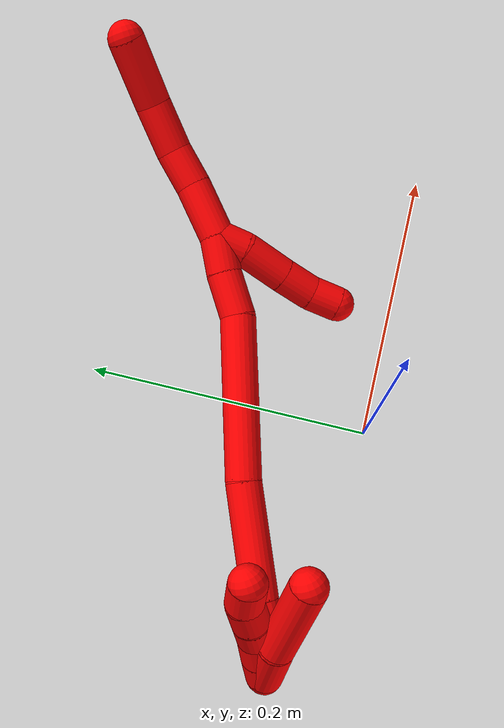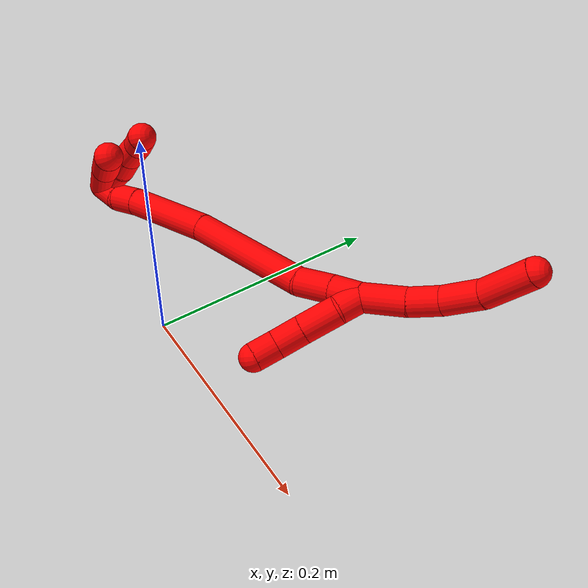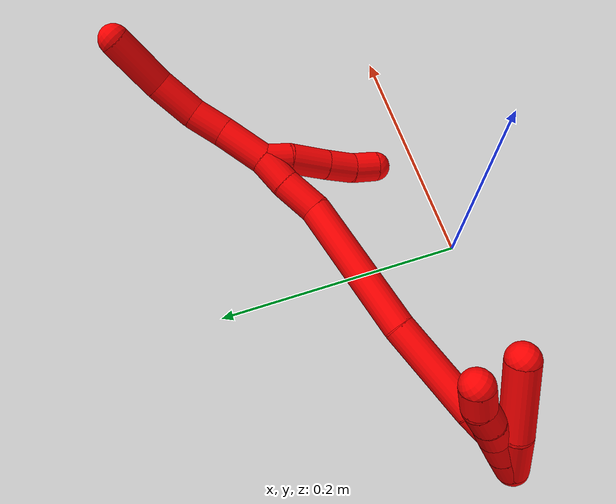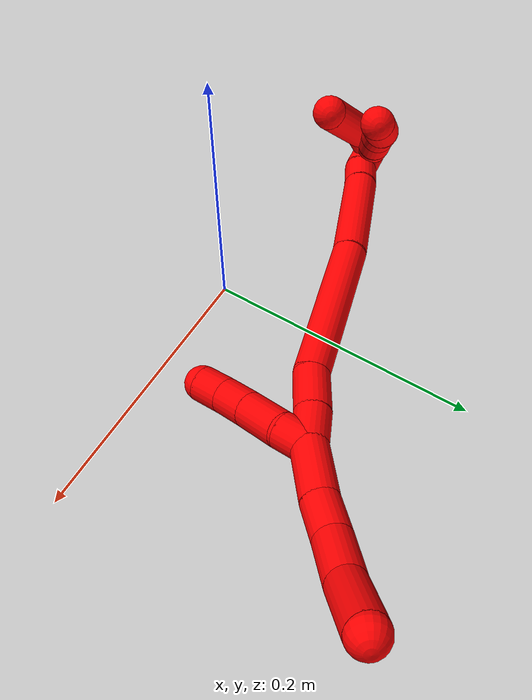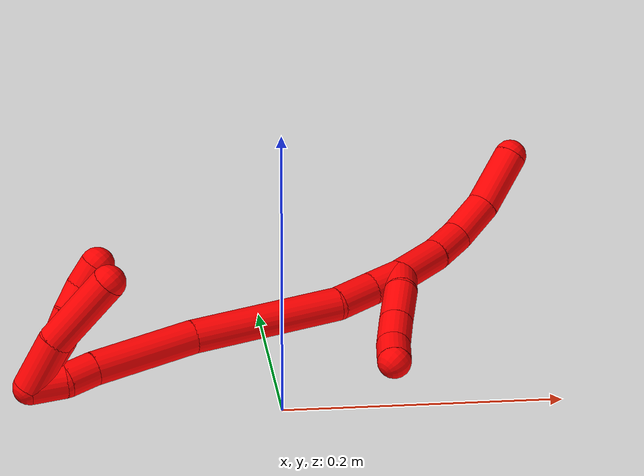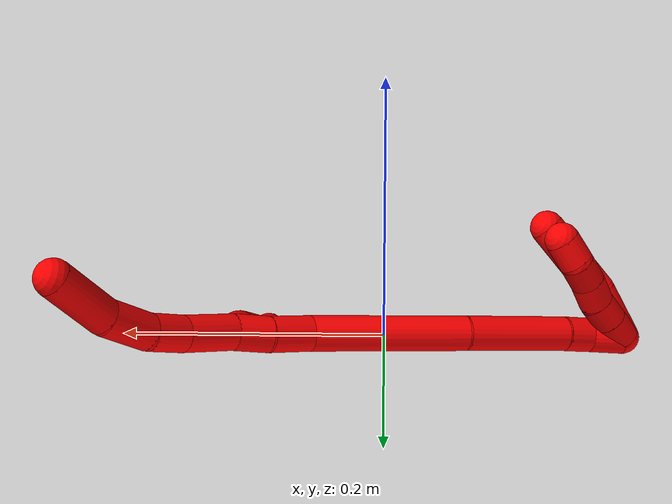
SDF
<sdf version="1.7">
 <world name="default">
  <model name="photoneo_s_sensor">
   <static>1</static>
   <pose>0 0 2 1.57079 1.57079 3.14159</pose>
   <link name="link">
    <inertial><mass>0.1</mass></inertial>
    <sensor name="sensor" type="depth">
     <update_rate>30</update_rate>
     <camera>
      <horizontal_fov>1.22</horizontal_fov>
      <image><width>1920</width><height>1200</height><format>B8G8R8</format></image>
      <clip><near>0.1</near><far>4</far></clip>
      <depth_camera><output>points</output></depth_camera>
     </camera>
     <plugin name="camera_plugin" filename="libgazebo_ros_depth_camera.so">
      <baseline>0.2</baseline>
      <alwaysOn>1</alwaysOn>
      <updateRate>0.0</updateRate>
      <cameraName>camera_ir</cameraName>
      <imageTopicName>/camera/color/image_raw</imageTopicName>
      <cameraInfoTopicName>/camera/color/camera_info</cameraInfoTopicName>
      <depthImageTopicName>/camera/depth/image_raw</depthImageTopicName>
      <depthImageCameraInfoTopicName>/camera/depth/camera_info</depthImageCameraInfoTopicName>
      <pointCloudTopicName>/camera/depth/points</pointCloudTopicName>
      <frameName>fr_optical</frameName>
      <pointCloudCutoff>0.1</pointCloudCutoff>
      <pointCloudCutoffMax>2.0</pointCloudCutoffMax>
      <distortionK1>0</distortionK1>
      <distortionK2>0</distortionK2>
      <distortionK3>0</distortionK3>
      <distortionT1>0</distortionT1>
      <distortionT2>0</distortionT2>
      <CxPrime>0</CxPrime>
      <Cx>0</Cx>
      <Cy>0</Cy>
      <focalLength>0</focalLength>
      <hackBaseline>0</hackBaseline>
     </plugin>
    </sensor>
   </link>
  </model>
  <model name="bin">
   <static>1</static>
   <link name="bottom">
    <collision name="collision-bottom">
     <pose>0 0 -0.01 0 -0 0</pose>
     <geometry><box><size>0.8 0.6 0.02</size></box></geometry>
     <surface>
      <friction><ode><mu>100</mu><mu2>100</mu2></ode></friction>
      <contact><collide_bitmask>65535</collide_bitmask></contact>
     </surface>
    </collision>
   </link>
   <link name="west_wall">
    <collision name="collision-west_wall">
     <pose>-0.41 0 0.1 0 -0 0</pose>
     <geometry><box><size>0.02 0.6 0.2</size></box></geometry>
     <surface>
      <friction><ode><mu>100</mu><mu2>100</mu2></ode></friction>
      <contact><collide_bitmask>65535</collide_bitmask></contact>
     </surface>
    </collision>
   </link>
   <link name="east_wall">
    <collision name="collision-east_wall">
     <pose>0.41 0 0.1 0 -0 0</pose>
     <geometry><box><size>0.02 0.6 0.2</size></box></geometry>
     <surface>
      <friction><ode><mu>100</mu><mu2>100</mu2></ode></friction>
      <contact><collide_bitmask>65535</collide_bitmask></contact>
     </surface>
    </collision>
   </link>
   <link name="south_wall">
    <collision name="collision-south_wall">
     <pose>0 -0.31 0.1 0 -0 0</pose>
     <geometry><box><size>0.8 0.02 0.2</size></box></geometry>
     <surface>
      <friction><ode><mu>100</mu><mu2>100</mu2></ode></friction>
      <contact><collide_bitmask>65535</collide_bitmask></contact>
     </surface>
    </collision>
   </link>
   <link name="north_wall">
    <collision name="collision-north_wall">
     <pose>0 0.31 0.1 0 -0 0</pose>
     <geometry><box><size>0.8 0.02 0.2</size></box></geometry>
     <surface>
      <friction><ode><mu>100</mu><mu2>100</mu2></ode></friction>
      <contact><collide_bitmask>65535</collide_bitmask></contact>
     </surface>
    </collision>
   </link>
  </model>
  <model name="2">
   <static>0</static>
   <link name="2">
    <collision name="collision-cylinder-e_1_2_8">
     <pose>0.006053 -0.001396 0.018954 0.073533 0.308349 0.011433</pose>
     <geometry><cylinder><radius>0.0125</radius><length>0.039893</length></cylinder></geometry>
     <surface>
      <friction><ode><mu>1.16</mu><mu2>1.16</mu2><slip1>0</slip1><slip2>0</slip2></ode></friction>
      <contact><ode><kp>1e+06</kp><kd>1</kd><max_vel>0</max_vel><min_depth>0.001</min_depth></ode></contact>
     </surface>
    </collision>
    <visual name="visual-cylinder-e_1_2_8">
     <pose>0.006053 -0.001396 0.018954 0.073533 0.308349 0.011433</pose>
     <geometry><cylinder><radius>0.0125</radius><length>0.039893</length></cylinder></geometry>
     <material><ambient>1 0 0 1</ambient></material>
    </visual>
    <collision name="collision-cylinder-e_2_8_9">
     <pose>0.015617 -0.002016 0.051318 -0.057821 0.255594 -0.007432</pose>
     <geometry><cylinder><radius>0.0125</radius><length>0.027767</length></cylinder></geometry>
     <surface>
      <friction><ode><mu>1.16</mu><mu2>1.16</mu2><slip1>0</slip1><slip2>0</slip2></ode></friction>
      <contact><ode><kp>1e+06</kp><kd>1</kd><max_vel>0</max_vel><min_depth>0.001</min_depth></ode></contact>
     </surface>
    </collision>
    <visual name="visual-cylinder-e_2_8_9">
     <pose>0.015617 -0.002016 0.051318 -0.057821 0.255594 -0.007432</pose>
     <geometry><cylinder><radius>0.0125</radius><length>0.027767</length></cylinder></geometry>
     <material><ambient>1 0 0 1</ambient></material>
    </visual>
    <collision name="collision-cylinder-e_3_9_10">
     <pose>0.019685 0.000333 0.082302 -0.08929 0.031633 -0.001413</pose>
     <geometry><cylinder><radius>0.0125</radius><length>0.035305</length></cylinder></geometry>
     <surface>
      <friction><ode><mu>1.16</mu><mu2>1.16</mu2><slip1>0</slip1><slip2>0</slip2></ode></friction>
      <contact><ode><kp>1e+06</kp><kd>1</kd><max_vel>0</max_vel><min_depth>0.001</min_depth></ode></contact>
     </surface>
    </collision>
    <visual name="visual-cylinder-e_3_9_10">
     <pose>0.019685 0.000333 0.082302 -0.08929 0.031633 -0.001413</pose>
     <geometry><cylinder><radius>0.0125</radius><length>0.035305</length></cylinder></geometry>
     <material><ambient>1 0 0 1</ambient></material>
    </visual>
    <collision name="collision-cylinder-e_4_10_6">
     <pose>0.015612 0.006681 0.122432 -0.208584 -0.198236 0.020817</pose>
     <geometry><cylinder><radius>0.0125</radius><length>0.047036</length></cylinder></geometry>
     <surface>
      <friction><ode><mu>1.16</mu><mu2>1.16</mu2><slip1>0</slip1><slip2>0</slip2></ode></friction>
      <contact><ode><kp>1e+06</kp><kd>1</kd><max_vel>0</max_vel><min_depth>0.001</min_depth></ode></contact>
     </surface>
    </collision>
    <visual name="visual-cylinder-e_4_10_6">
     <pose>0.015612 0.006681 0.122432 -0.208584 -0.198236 0.020817</pose>
     <geometry><cylinder><radius>0.0125</radius><length>0.047036</length></cylinder></geometry>
     <material><ambient>1 0 0 1</ambient></material>
    </visual>
    <collision name="collision-cylinder-e_1_2_11">
     <pose>-0.004508 -0.006469 -0.00723 2.41169 -0.434943 -1.04869</pose>
     <geometry><cylinder><radius>0.0125</radius><length>0.021396</length></cylinder></geometry>
     <surface>
      <friction><ode><mu>1.16</mu><mu2>1.16</mu2><slip1>0</slip1><slip2>0</slip2></ode></friction>
      <contact><ode><kp>1e+06</kp><kd>1</kd><max_vel>0</max_vel><min_depth>0.001</min_depth></ode></contact>
     </surface>
    </collision>
    <visual name="visual-cylinder-e_1_2_11">
     <pose>-0.004508 -0.006469 -0.00723 2.41169 -0.434943 -1.04869</pose>
     <geometry><cylinder><radius>0.0125</radius><length>0.021396</length></cylinder></geometry>
     <material><ambient>1 0 0 1</ambient></material>
    </visual>
    <collision name="collision-cylinder-e_2_11_12">
     <pose>-0.013114 -0.021834 -0.027523 2.5437 -0.253745 -0.784868</pose>
     <geometry><cylinder><radius>0.0125</radius><length>0.032652</length></cylinder></geometry>
     <surface>
      <friction><ode><mu>1.16</mu><mu2>1.16</mu2><slip1>0</slip1><slip2>0</slip2></ode></friction>
      <contact><ode><kp>1e+06</kp><kd>1</kd><max_vel>0</max_vel><min_depth>0.001</min_depth></ode></contact>
     </surface>
    </collision>
    <visual name="visual-cylinder-e_2_11_12">
     <pose>-0.013114 -0.021834 -0.027523 2.5437 -0.253745 -0.784868</pose>
     <geometry><cylinder><radius>0.0125</radius><length>0.032652</length></cylinder></geometry>
     <material><ambient>1 0 0 1</ambient></material>
    </visual>
    <collision name="collision-cylinder-e_3_12_13">
     <pose>-0.020567 -0.037736 -0.050224 2.51311 -0.274431 -0.803501</pose>
     <geometry><cylinder><radius>0.0125</radius><length>0.02476</length></cylinder></geometry>
     <surface>
      <friction><ode><mu>1.16</mu><mu2>1.16</mu2><slip1>0</slip1><slip2>0</slip2></ode></friction>
      <contact><ode><kp>1e+06</kp><kd>1</kd><max_vel>0</max_vel><min_depth>0.001</min_depth></ode></contact>
     </surface>
    </collision>
    <visual name="visual-cylinder-e_3_12_13">
     <pose>-0.020567 -0.037736 -0.050224 2.51311 -0.274431 -0.803501</pose>
     <geometry><cylinder><radius>0.0125</radius><length>0.02476</length></cylinder></geometry>
     <material><ambient>1 0 0 1</ambient></material>
    </visual>
    <collision name="collision-cylinder-e_4_13_5">
     <pose>-0.028471 -0.051263 -0.066869 2.39198 -0.443682 -1.04117</pose>
     <geometry><cylinder><radius>0.0125</radius><length>0.021191</length></cylinder></geometry>
     <surface>
      <friction><ode><mu>1.16</mu><mu2>1.16</mu2><slip1>0</slip1><slip2>0</slip2></ode></friction>
      <contact><ode><kp>1e+06</kp><kd>1</kd><max_vel>0</max_vel><min_depth>0.001</min_depth></ode></contact>
     </surface>
    </collision>
    <visual name="visual-cylinder-e_4_13_5">
     <pose>-0.028471 -0.051263 -0.066869 2.39198 -0.443682 -1.04117</pose>
     <geometry><cylinder><radius>0.0125</radius><length>0.021191</length></cylinder></geometry>
     <material><ambient>1 0 0 1</ambient></material>
    </visual>
    <collision name="collision-cylinder-e_1_2_14">
     <pose>-0.002242 0.003677 -0.012484 -2.85514 -0.170625 1.07051</pose>
     <geometry><cylinder><radius>0.0125</radius><length>0.026413</length></cylinder></geometry>
     <surface>
      <friction><ode><mu>1.16</mu><mu2>1.16</mu2><slip1>0</slip1><slip2>0</slip2></ode></friction>
      <contact><ode><kp>1e+06</kp><kd>1</kd><max_vel>0</max_vel><min_depth>0.001</min_depth></ode></contact>
     </surface>
    </collision>
    <visual name="visual-cylinder-e_1_2_14">
     <pose>-0.002242 0.003677 -0.012484 -2.85514 -0.170625 1.07051</pose>
     <geometry><cylinder><radius>0.0125</radius><length>0.026413</length></cylinder></geometry>
     <material><ambient>1 0 0 1</ambient></material>
    </visual>
    <collision name="collision-cylinder-e_2_14_15">
     <pose>-0.008848 0.010612 -0.039971 -2.92779 -0.276892 1.82905</pose>
     <geometry><cylinder><radius>0.0125</radius><length>0.03192</length></cylinder></geometry>
     <surface>
      <friction><ode><mu>1.16</mu><mu2>1.16</mu2><slip1>0</slip1><slip2>0</slip2></ode></friction>
      <contact><ode><kp>1e+06</kp><kd>1</kd><max_vel>0</max_vel><min_depth>0.001</min_depth></ode></contact>
     </surface>
    </collision>
    <visual name="visual-cylinder-e_2_14_15">
     <pose>-0.008848 0.010612 -0.039971 -2.92779 -0.276892 1.82905</pose>
     <geometry><cylinder><radius>0.0125</radius><length>0.03192</length></cylinder></geometry>
     <material><ambient>1 0 0 1</ambient></material>
    </visual>
    <collision name="collision-cylinder-e_3_15_16">
     <pose>-0.023757 0.040058 -0.104467 -2.6549 -0.186159 0.719308</pose>
     <geometry><cylinder><radius>0.0125</radius><length>0.113958</length></cylinder></geometry>
     <surface>
      <friction><ode><mu>1.16</mu><mu2>1.16</mu2><slip1>0</slip1><slip2>0</slip2></ode></friction>
      <contact><ode><kp>1e+06</kp><kd>1</kd><max_vel>0</max_vel><min_depth>0.001</min_depth></ode></contact>
     </surface>
    </collision>
    <visual name="visual-cylinder-e_3_15_16">
     <pose>-0.023757 0.040058 -0.104467 -2.6549 -0.186159 0.719308</pose>
     <geometry><cylinder><radius>0.0125</radius><length>0.113958</length></cylinder></geometry>
     <material><ambient>1 0 0 1</ambient></material>
    </visual>
    <collision name="collision-cylinder-e_4_16_17">
     <pose>-0.042603 0.080298 -0.190074 -2.77054 -0.211013 1.02741</pose>
     <geometry><cylinder><radius>0.0125</radius><length>0.07926</length></cylinder></geometry>
     <surface>
      <friction><ode><mu>1.16</mu><mu2>1.16</mu2><slip1>0</slip1><slip2>0</slip2></ode></friction>
      <contact><ode><kp>1e+06</kp><kd>1</kd><max_vel>0</max_vel><min_depth>0.001</min_depth></ode></contact>
     </surface>
    </collision>
    <visual name="visual-cylinder-e_4_16_17">
     <pose>-0.042603 0.080298 -0.190074 -2.77054 -0.211013 1.02741</pose>
     <geometry><cylinder><radius>0.0125</radius><length>0.07926</length></cylinder></geometry>
     <material><ambient>1 0 0 1</ambient></material>
    </visual>
    <collision name="collision-cylinder-e_5_17_18">
     <pose>-0.053147 0.097199 -0.236876 -2.88106 -0.200016 1.30723</pose>
     <geometry><cylinder><radius>0.0125</radius><length>0.022575</length></cylinder></geometry>
     <surface>
      <friction><ode><mu>1.16</mu><mu2>1.16</mu2><slip1>0</slip1><slip2>0</slip2></ode></friction>
      <contact><ode><kp>1e+06</kp><kd>1</kd><max_vel>0</max_vel><min_depth>0.001</min_depth></ode></contact>
     </surface>
    </collision>
    <visual name="visual-cylinder-e_5_17_18">
     <pose>-0.053147 0.097199 -0.236876 -2.88106 -0.200016 1.30723</pose>
     <geometry><cylinder><radius>0.0125</radius><length>0.022575</length></cylinder></geometry>
     <material><ambient>1 0 0 1</ambient></material>
    </visual>
    <collision name="collision-cylinder-e_6_18_1">
     <pose>-0.056713 0.10719 -0.258271 -2.5533 -0.102518 0.335529</pose>
     <geometry><cylinder><radius>0.0125</radius><length>0.025874</length></cylinder></geometry>
     <surface>
      <friction><ode><mu>1.16</mu><mu2>1.16</mu2><slip1>0</slip1><slip2>0</slip2></ode></friction>
      <contact><ode><kp>1e+06</kp><kd>1</kd><max_vel>0</max_vel><min_depth>0.001</min_depth></ode></contact>
     </surface>
    </collision>
    <visual name="visual-cylinder-e_6_18_1">
     <pose>-0.056713 0.10719 -0.258271 -2.5533 -0.102518 0.335529</pose>
     <geometry><cylinder><radius>0.0125</radius><length>0.025874</length></cylinder></geometry>
     <material><ambient>1 0 0 1</ambient></material>
    </visual>
    <collision name="collision-cylinder-e_1_1_19">
     <pose>-0.071592 0.114111 -0.254214 0.014942 -0.742724 -0.005819</pose>
     <geometry><cylinder><radius>0.0125</radius><length>0.040085</length></cylinder></geometry>
     <surface>
      <friction><ode><mu>1.16</mu><mu2>1.16</mu2><slip1>0</slip1><slip2>0</slip2></ode></friction>
      <contact><ode><kp>1e+06</kp><kd>1</kd><max_vel>0</max_vel><min_depth>0.001</min_depth></ode></contact>
     </surface>
    </collision>
    <visual name="visual-cylinder-e_1_1_19">
     <pose>-0.071592 0.114111 -0.254214 0.014942 -0.742724 -0.005819</pose>
     <geometry><cylinder><radius>0.0125</radius><length>0.040085</length></cylinder></geometry>
     <material><ambient>1 0 0 1</ambient></material>
    </visual>
    <collision name="collision-cylinder-e_2_19_4">
     <pose>-0.103904 0.106988 -0.217137 0.300012 -0.676584 -0.106248</pose>
     <geometry><cylinder><radius>0.0125</radius><length>0.059915</length></cylinder></geometry>
     <surface>
      <friction><ode><mu>1.16</mu><mu2>1.16</mu2><slip1>0</slip1><slip2>0</slip2></ode></friction>
      <contact><ode><kp>1e+06</kp><kd>1</kd><max_vel>0</max_vel><min_depth>0.001</min_depth></ode></contact>
     </surface>
    </collision>
    <visual name="visual-cylinder-e_2_19_4">
     <pose>-0.103904 0.106988 -0.217137 0.300012 -0.676584 -0.106248</pose>
     <geometry><cylinder><radius>0.0125</radius><length>0.059915</length></cylinder></geometry>
     <material><ambient>1 0 0 1</ambient></material>
    </visual>
    <collision name="collision-cylinder-e_1_1_20">
     <pose>-0.061775 0.115468 -0.259771 -0.122789 -0.383073 0.023839</pose>
     <geometry><cylinder><radius>0.0125</radius><length>0.02</length></cylinder></geometry>
     <surface>
      <friction><ode><mu>1.16</mu><mu2>1.16</mu2><slip1>0</slip1><slip2>0</slip2></ode></friction>
      <contact><ode><kp>1e+06</kp><kd>1</kd><max_vel>0</max_vel><min_depth>0.001</min_depth></ode></contact>
     </surface>
    </collision>
    <visual name="visual-cylinder-e_1_1_20">
     <pose>-0.061775 0.115468 -0.259771 -0.122789 -0.383073 0.023839</pose>
     <geometry><cylinder><radius>0.0125</radius><length>0.02</length></cylinder></geometry>
     <material><ambient>1 0 0 1</ambient></material>
    </visual>
    <collision name="collision-cylinder-e_2_20_21">
     <pose>-0.069315 0.11755 -0.241365 -0.102446 -0.390074 0.020255</pose>
     <geometry><cylinder><radius>0.0125</radius><length>0.02</length></cylinder></geometry>
     <surface>
      <friction><ode><mu>1.16</mu><mu2>1.16</mu2><slip1>0</slip1><slip2>0</slip2></ode></friction>
      <contact><ode><kp>1e+06</kp><kd>1</kd><max_vel>0</max_vel><min_depth>0.001</min_depth></ode></contact>
     </surface>
    </collision>
    <visual name="visual-cylinder-e_2_20_21">
     <pose>-0.069315 0.11755 -0.241365 -0.102446 -0.390074 0.020255</pose>
     <geometry><cylinder><radius>0.0125</radius><length>0.02</length></cylinder></geometry>
     <material><ambient>1 0 0 1</ambient></material>
    </visual>
    <collision name="collision-cylinder-e_3_21_22">
     <pose>-0.077932 0.12089 -0.223734 -0.276661 -0.502328 0.071412</pose>
     <geometry><cylinder><radius>0.0125</radius><length>0.02</length></cylinder></geometry>
     <surface>
      <friction><ode><mu>1.16</mu><mu2>1.16</mu2><slip1>0</slip1><slip2>0</slip2></ode></friction>
      <contact><ode><kp>1e+06</kp><kd>1</kd><max_vel>0</max_vel><min_depth>0.001</min_depth></ode></contact>
     </surface>
    </collision>
    <visual name="visual-cylinder-e_3_21_22">
     <pose>-0.077932 0.12089 -0.223734 -0.276661 -0.502328 0.071412</pose>
     <geometry><cylinder><radius>0.0125</radius><length>0.02</length></cylinder></geometry>
     <material><ambient>1 0 0 1</ambient></material>
    </visual>
    <collision name="collision-cylinder-e_4_22_23">
     <pose>-0.086655 0.125293 -0.206319 -0.220059 -0.401476 0.044951</pose>
     <geometry><cylinder><radius>0.0125</radius><length>0.02</length></cylinder></geometry>
     <surface>
      <friction><ode><mu>1.16</mu><mu2>1.16</mu2><slip1>0</slip1><slip2>0</slip2></ode></friction>
      <contact><ode><kp>1e+06</kp><kd>1</kd><max_vel>0</max_vel><min_depth>0.001</min_depth></ode></contact>
     </surface>
    </collision>
    <visual name="visual-cylinder-e_4_22_23">
     <pose>-0.086655 0.125293 -0.206319 -0.220059 -0.401476 0.044951</pose>
     <geometry><cylinder><radius>0.0125</radius><length>0.02</length></cylinder></geometry>
     <material><ambient>1 0 0 1</ambient></material>
    </visual>
    <collision name="collision-cylinder-e_5_23_3">
     <pose>-0.096454 0.127124 -0.189258 0.022096 -0.629931 -0.007199</pose>
     <geometry><cylinder><radius>0.0125</radius><length>0.02</length></cylinder></geometry>
     <surface>
      <friction><ode><mu>1.16</mu><mu2>1.16</mu2><slip1>0</slip1><slip2>0</slip2></ode></friction>
      <contact><ode><kp>1e+06</kp><kd>1</kd><max_vel>0</max_vel><min_depth>0.001</min_depth></ode></contact>
     </surface>
    </collision>
    <visual name="visual-cylinder-e_5_23_3">
     <pose>-0.096454 0.127124 -0.189258 0.022096 -0.629931 -0.007199</pose>
     <geometry><cylinder><radius>0.0125</radius><length>0.02</length></cylinder></geometry>
     <material><ambient>1 0 0 1</ambient></material>
    </visual>
    <collision name="collision-sphere-3">
     <pose>-0.102344 0.126945 -0.181179 0 -0 0</pose>
     <geometry><sphere><radius>0.0125</radius></sphere></geometry>
     <surface>
      <friction><ode><mu>1.16</mu><mu2>1.16</mu2><slip1>0</slip1><slip2>0</slip2></ode></friction>
      <contact><ode><kp>1e+06</kp><kd>1</kd><max_vel>0</max_vel><min_depth>0.001</min_depth></ode></contact>
     </surface>
    </collision>
    <visual name="visual-sphere-3">
     <pose>-0.102344 0.126945 -0.181179 0 -0 0</pose>
     <geometry><sphere><radius>0.0125</radius></sphere></geometry>
     <material><ambient>1 0 0 1</ambient></material>
    </visual>
    <collision name="collision-sphere-23">
     <pose>-0.090563 0.127302 -0.197337 0 -0 0</pose>
     <geometry><sphere><radius>0.0125</radius></sphere></geometry>
     <surface>
      <friction><ode><mu>1.16</mu><mu2>1.16</mu2><slip1>0</slip1><slip2>0</slip2></ode></friction>
      <contact><ode><kp>1e+06</kp><kd>1</kd><max_vel>0</max_vel><min_depth>0.001</min_depth></ode></contact>
     </surface>
    </collision>
    <visual name="visual-sphere-23">
     <pose>-0.090563 0.127302 -0.197337 0 -0 0</pose>
     <geometry><sphere><radius>0.0125</radius></sphere></geometry>
     <material><ambient>1 0 0 1</ambient></material>
    </visual>
    <collision name="collision-sphere-22">
     <pose>-0.082747 0.123284 -0.215302 0 -0 0</pose>
     <geometry><sphere><radius>0.0125</radius></sphere></geometry>
     <surface>
      <friction><ode><mu>1.16</mu><mu2>1.16</mu2><slip1>0</slip1><slip2>0</slip2></ode></friction>
      <contact><ode><kp>1e+06</kp><kd>1</kd><max_vel>0</max_vel><min_depth>0.001</min_depth></ode></contact>
     </surface>
    </collision>
    <visual name="visual-sphere-22">
     <pose>-0.082747 0.123284 -0.215302 0 -0 0</pose>
     <geometry><sphere><radius>0.0125</radius></sphere></geometry>
     <material><ambient>1 0 0 1</ambient></material>
    </visual>
    <collision name="collision-sphere-21">
     <pose>-0.073118 0.118496 -0.232165 0 -0 0</pose>
     <geometry><sphere><radius>0.0125</radius></sphere></geometry>
     <surface>
      <friction><ode><mu>1.16</mu><mu2>1.16</mu2><slip1>0</slip1><slip2>0</slip2></ode></friction>
      <contact><ode><kp>1e+06</kp><kd>1</kd><max_vel>0</max_vel><min_depth>0.001</min_depth></ode></contact>
     </surface>
    </collision>
    <visual name="visual-sphere-21">
     <pose>-0.073118 0.118496 -0.232165 0 -0 0</pose>
     <geometry><sphere><radius>0.0125</radius></sphere></geometry>
     <material><ambient>1 0 0 1</ambient></material>
    </visual>
    <collision name="collision-sphere-20">
     <pose>-0.065513 0.116604 -0.250566 0 -0 0</pose>
     <geometry><sphere><radius>0.0125</radius></sphere></geometry>
     <surface>
      <friction><ode><mu>1.16</mu><mu2>1.16</mu2><slip1>0</slip1><slip2>0</slip2></ode></friction>
      <contact><ode><kp>1e+06</kp><kd>1</kd><max_vel>0</max_vel><min_depth>0.001</min_depth></ode></contact>
     </surface>
    </collision>
    <visual name="visual-sphere-20">
     <pose>-0.065513 0.116604 -0.250566 0 -0 0</pose>
     <geometry><sphere><radius>0.0125</radius></sphere></geometry>
     <material><ambient>1 0 0 1</ambient></material>
    </visual>
    <collision name="collision-sphere-4">
     <pose>-0.122661 0.100085 -0.194822 0 -0 0</pose>
     <geometry><sphere><radius>0.0125</radius></sphere></geometry>
     <surface>
      <friction><ode><mu>1.16</mu><mu2>1.16</mu2><slip1>0</slip1><slip2>0</slip2></ode></friction>
      <contact><ode><kp>1e+06</kp><kd>1</kd><max_vel>0</max_vel><min_depth>0.001</min_depth></ode></contact>
     </surface>
    </collision>
    <visual name="visual-sphere-4">
     <pose>-0.122661 0.100085 -0.194822 0 -0 0</pose>
     <geometry><sphere><radius>0.0125</radius></sphere></geometry>
     <material><ambient>1 0 0 1</ambient></material>
    </visual>
    <collision name="collision-sphere-11">
     <pose>-0.009015 -0.012939 -0.014461 0 -0 0</pose>
     <geometry><sphere><radius>0.0125</radius></sphere></geometry>
     <surface>
      <friction><ode><mu>1.16</mu><mu2>1.16</mu2><slip1>0</slip1><slip2>0</slip2></ode></friction>
      <contact><ode><kp>1e+06</kp><kd>1</kd><max_vel>0</max_vel><min_depth>0.001</min_depth></ode></contact>
     </surface>
    </collision>
    <visual name="visual-sphere-11">
     <pose>-0.009015 -0.012939 -0.014461 0 -0 0</pose>
     <geometry><sphere><radius>0.0125</radius></sphere></geometry>
     <material><ambient>1 0 0 1</ambient></material>
    </visual>
    <collision name="collision-sphere-6">
     <pose>0.01098 0.011456 0.14499 0 -0 0</pose>
     <geometry><sphere><radius>0.0125</radius></sphere></geometry>
     <surface>
      <friction><ode><mu>1.16</mu><mu2>1.16</mu2><slip1>0</slip1><slip2>0</slip2></ode></friction>
      <contact><ode><kp>1e+06</kp><kd>1</kd><max_vel>0</max_vel><min_depth>0.001</min_depth></ode></contact>
     </surface>
    </collision>
    <visual name="visual-sphere-6">
     <pose>0.01098 0.011456 0.14499 0 -0 0</pose>
     <geometry><sphere><radius>0.0125</radius></sphere></geometry>
     <material><ambient>1 0 0 1</ambient></material>
    </visual>
    <collision name="collision-sphere-10">
     <pose>0.020243 0.001907 0.099875 0 -0 0</pose>
     <geometry><sphere><radius>0.0125</radius></sphere></geometry>
     <surface>
      <friction><ode><mu>1.16</mu><mu2>1.16</mu2><slip1>0</slip1><slip2>0</slip2></ode></friction>
      <contact><ode><kp>1e+06</kp><kd>1</kd><max_vel>0</max_vel><min_depth>0.001</min_depth></ode></contact>
     </surface>
    </collision>
    <visual name="visual-sphere-10">
     <pose>0.020243 0.001907 0.099875 0 -0 0</pose>
     <geometry><sphere><radius>0.0125</radius></sphere></geometry>
     <material><ambient>1 0 0 1</ambient></material>
    </visual>
    <collision name="collision-sphere-9">
     <pose>0.019127 -0.00124 0.064728 0 -0 0</pose>
     <geometry><sphere><radius>0.0125</radius></sphere></geometry>
     <surface>
      <friction><ode><mu>1.16</mu><mu2>1.16</mu2><slip1>0</slip1><slip2>0</slip2></ode></friction>
      <contact><ode><kp>1e+06</kp><kd>1</kd><max_vel>0</max_vel><min_depth>0.001</min_depth></ode></contact>
     </surface>
    </collision>
    <visual name="visual-sphere-9">
     <pose>0.019127 -0.00124 0.064728 0 -0 0</pose>
     <geometry><sphere><radius>0.0125</radius></sphere></geometry>
     <material><ambient>1 0 0 1</ambient></material>
    </visual>
    <collision name="collision-sphere-2">
     <geometry><sphere><radius>0.0125</radius></sphere></geometry>
     <surface>
      <friction><ode><mu>1.16</mu><mu2>1.16</mu2><slip1>0</slip1><slip2>0</slip2></ode></friction>
      <contact><ode><kp>1e+06</kp><kd>1</kd><max_vel>0</max_vel><min_depth>0.001</min_depth></ode></contact>
     </surface>
    </collision>
    <visual name="visual-sphere-2">
     <geometry><sphere><radius>0.0125</radius></sphere></geometry>
     <material><ambient>1 0 0 1</ambient></material>
    </visual>
    <collision name="collision-sphere-19">
     <pose>-0.085147 0.113891 -0.239452 0 -0 0</pose>
     <geometry><sphere><radius>0.0125</radius></sphere></geometry>
     <surface>
      <friction><ode><mu>1.16</mu><mu2>1.16</mu2><slip1>0</slip1><slip2>0</slip2></ode></friction>
      <contact><ode><kp>1e+06</kp><kd>1</kd><max_vel>0</max_vel><min_depth>0.001</min_depth></ode></contact>
     </surface>
    </collision>
    <visual name="visual-sphere-19">
     <pose>-0.085147 0.113891 -0.239452 0 -0 0</pose>
     <geometry><sphere><radius>0.0125</radius></sphere></geometry>
     <material><ambient>1 0 0 1</ambient></material>
    </visual>
    <collision name="collision-sphere-8">
     <pose>0.012107 -0.002793 0.037908 0 -0 0</pose>
     <geometry><sphere><radius>0.0125</radius></sphere></geometry>
     <surface>
      <friction><ode><mu>1.16</mu><mu2>1.16</mu2><slip1>0</slip1><slip2>0</slip2></ode></friction>
      <contact><ode><kp>1e+06</kp><kd>1</kd><max_vel>0</max_vel><min_depth>0.001</min_depth></ode></contact>
     </surface>
    </collision>
    <visual name="visual-sphere-8">
     <pose>0.012107 -0.002793 0.037908 0 -0 0</pose>
     <geometry><sphere><radius>0.0125</radius></sphere></geometry>
     <material><ambient>1 0 0 1</ambient></material>
    </visual>
    <collision name="collision-sphere-12">
     <pose>-0.017212 -0.03073 -0.040584 0 -0 0</pose>
     <geometry><sphere><radius>0.0125</radius></sphere></geometry>
     <surface>
      <friction><ode><mu>1.16</mu><mu2>1.16</mu2><slip1>0</slip1><slip2>0</slip2></ode></friction>
      <contact><ode><kp>1e+06</kp><kd>1</kd><max_vel>0</max_vel><min_depth>0.001</min_depth></ode></contact>
     </surface>
    </collision>
    <visual name="visual-sphere-12">
     <pose>-0.017212 -0.03073 -0.040584 0 -0 0</pose>
     <geometry><sphere><radius>0.0125</radius></sphere></geometry>
     <material><ambient>1 0 0 1</ambient></material>
    </visual>
    <collision name="collision-sphere-13">
     <pose>-0.023922 -0.044742 -0.059864 0 -0 0</pose>
     <geometry><sphere><radius>0.0125</radius></sphere></geometry>
     <surface>
      <friction><ode><mu>1.16</mu><mu2>1.16</mu2><slip1>0</slip1><slip2>0</slip2></ode></friction>
      <contact><ode><kp>1e+06</kp><kd>1</kd><max_vel>0</max_vel><min_depth>0.001</min_depth></ode></contact>
     </surface>
    </collision>
    <visual name="visual-sphere-13">
     <pose>-0.023922 -0.044742 -0.059864 0 -0 0</pose>
     <geometry><sphere><radius>0.0125</radius></sphere></geometry>
     <material><ambient>1 0 0 1</ambient></material>
    </visual>
    <collision name="collision-sphere-5">
     <pose>-0.033019 -0.057783 -0.073873 0 -0 0</pose>
     <geometry><sphere><radius>0.0125</radius></sphere></geometry>
     <surface>
      <friction><ode><mu>1.16</mu><mu2>1.16</mu2><slip1>0</slip1><slip2>0</slip2></ode></friction>
      <contact><ode><kp>1e+06</kp><kd>1</kd><max_vel>0</max_vel><min_depth>0.001</min_depth></ode></contact>
     </surface>
    </collision>
    <visual name="visual-sphere-5">
     <pose>-0.033019 -0.057783 -0.073873 0 -0 0</pose>
     <geometry><sphere><radius>0.0125</radius></sphere></geometry>
     <material><ambient>1 0 0 1</ambient></material>
    </visual>
    <collision name="collision-sphere-14">
     <pose>-0.004485 0.007355 -0.024969 0 -0 0</pose>
     <geometry><sphere><radius>0.0125</radius></sphere></geometry>
     <surface>
      <friction><ode><mu>1.16</mu><mu2>1.16</mu2><slip1>0</slip1><slip2>0</slip2></ode></friction>
      <contact><ode><kp>1e+06</kp><kd>1</kd><max_vel>0</max_vel><min_depth>0.001</min_depth></ode></contact>
     </surface>
    </collision>
    <visual name="visual-sphere-14">
     <pose>-0.004485 0.007355 -0.024969 0 -0 0</pose>
     <geometry><sphere><radius>0.0125</radius></sphere></geometry>
     <material><ambient>1 0 0 1</ambient></material>
    </visual>
    <collision name="collision-sphere-15">
     <pose>-0.013211 0.013869 -0.054974 0 -0 0</pose>
     <geometry><sphere><radius>0.0125</radius></sphere></geometry>
     <surface>
      <friction><ode><mu>1.16</mu><mu2>1.16</mu2><slip1>0</slip1><slip2>0</slip2></ode></friction>
      <contact><ode><kp>1e+06</kp><kd>1</kd><max_vel>0</max_vel><min_depth>0.001</min_depth></ode></contact>
     </surface>
    </collision>
    <visual name="visual-sphere-15">
     <pose>-0.013211 0.013869 -0.054974 0 -0 0</pose>
     <geometry><sphere><radius>0.0125</radius></sphere></geometry>
     <material><ambient>1 0 0 1</ambient></material>
    </visual>
    <collision name="collision-sphere-16">
     <pose>-0.034303 0.066247 -0.15396 0 -0 0</pose>
     <geometry><sphere><radius>0.0125</radius></sphere></geometry>
     <surface>
      <friction><ode><mu>1.16</mu><mu2>1.16</mu2><slip1>0</slip1><slip2>0</slip2></ode></friction>
      <contact><ode><kp>1e+06</kp><kd>1</kd><max_vel>0</max_vel><min_depth>0.001</min_depth></ode></contact>
     </surface>
    </collision>
    <visual name="visual-sphere-16">
     <pose>-0.034303 0.066247 -0.15396 0 -0 0</pose>
     <geometry><sphere><radius>0.0125</radius></sphere></geometry>
     <material><ambient>1 0 0 1</ambient></material>
    </visual>
    <collision name="collision-sphere-17">
     <pose>-0.050904 0.09435 -0.226187 0 -0 0</pose>
     <geometry><sphere><radius>0.0125</radius></sphere></geometry>
     <surface>
      <friction><ode><mu>1.16</mu><mu2>1.16</mu2><slip1>0</slip1><slip2>0</slip2></ode></friction>
      <contact><ode><kp>1e+06</kp><kd>1</kd><max_vel>0</max_vel><min_depth>0.001</min_depth></ode></contact>
     </surface>
    </collision>
    <visual name="visual-sphere-17">
     <pose>-0.050904 0.09435 -0.226187 0 -0 0</pose>
     <geometry><sphere><radius>0.0125</radius></sphere></geometry>
     <material><ambient>1 0 0 1</ambient></material>
    </visual>
    <collision name="collision-sphere-18">
     <pose>-0.055389 0.100049 -0.247565 0 -0 0</pose>
     <geometry><sphere><radius>0.0125</radius></sphere></geometry>
     <surface>
      <friction><ode><mu>1.16</mu><mu2>1.16</mu2><slip1>0</slip1><slip2>0</slip2></ode></friction>
      <contact><ode><kp>1e+06</kp><kd>1</kd><max_vel>0</max_vel><min_depth>0.001</min_depth></ode></contact>
     </surface>
    </collision>
    <visual name="visual-sphere-18">
     <pose>-0.055389 0.100049 -0.247565 0 -0 0</pose>
     <geometry><sphere><radius>0.0125</radius></sphere></geometry>
     <material><ambient>1 0 0 1</ambient></material>
    </visual>
    <collision name="collision-sphere-1">
     <pose>-0.058037 0.114332 -0.268976 0 -0 0</pose>
     <geometry><sphere><radius>0.0125</radius></sphere></geometry>
     <surface>
      <friction><ode><mu>1.16</mu><mu2>1.16</mu2><slip1>0</slip1><slip2>0</slip2></ode></friction>
      <contact><ode><kp>1e+06</kp><kd>1</kd><max_vel>0</max_vel><min_depth>0.001</min_depth></ode></contact>
     </surface>
    </collision>
    <visual name="visual-sphere-1">
     <pose>-0.058037 0.114332 -0.268976 0 -0 0</pose>
     <geometry><sphere><radius>0.0125</radius></sphere></geometry>
     <material><ambient>1 0 0 1</ambient></material>
    </visual>
    <inertial>
     <pose>-0.034085 0.049048 -0.105444 0 -0 0</pose>
     <mass>0.75</mass>
     <inertia>
      <ixx>0.000283</ixx>
      <ixy>0</ixy>
      <ixz>0</ixz>
      <iyy>8.2e-05</iyy>
      <iyz>0</iyz>
      <izz>-1.6e-05</izz>
     </inertia>
    </inertial>
   </link>
   <pose>0.101364 0.131578 0.05154 0.690374 0.893826 1.42012</pose>
  </model>
 </world>
</sdf>
